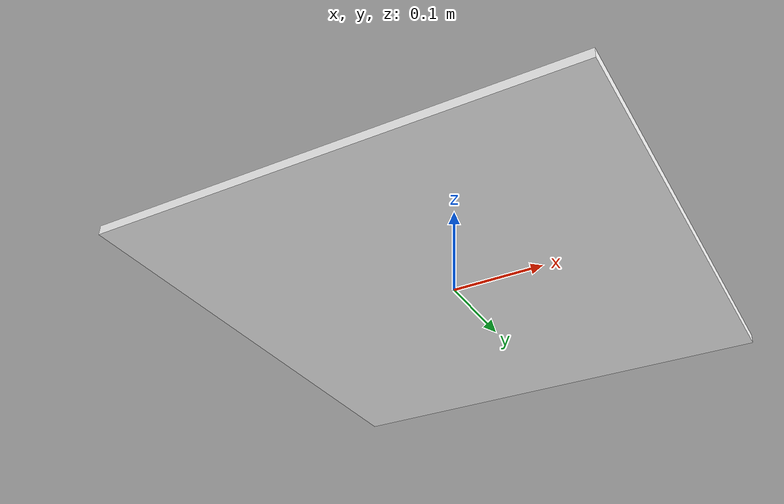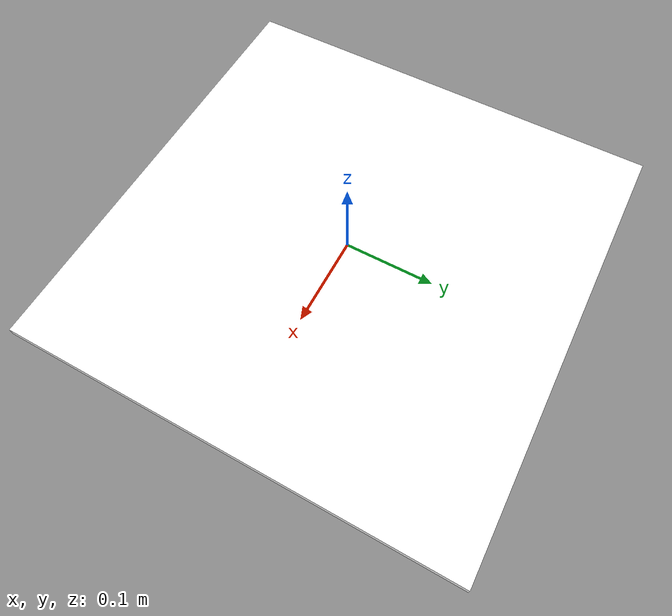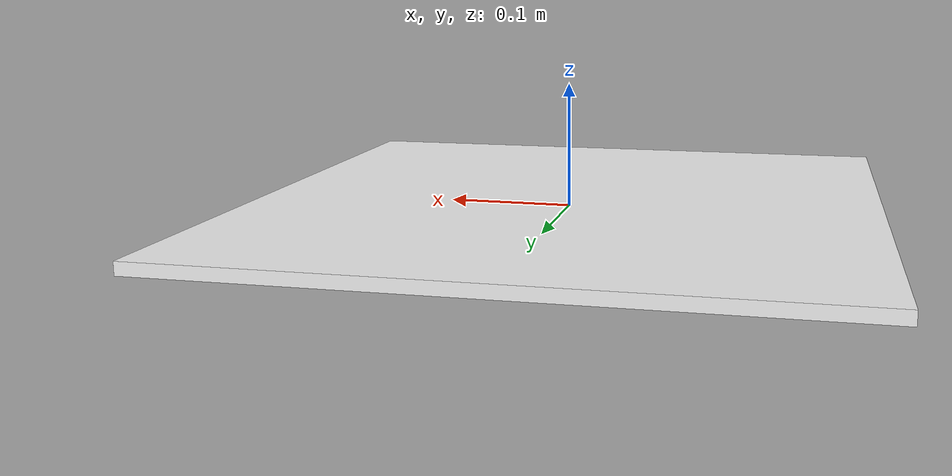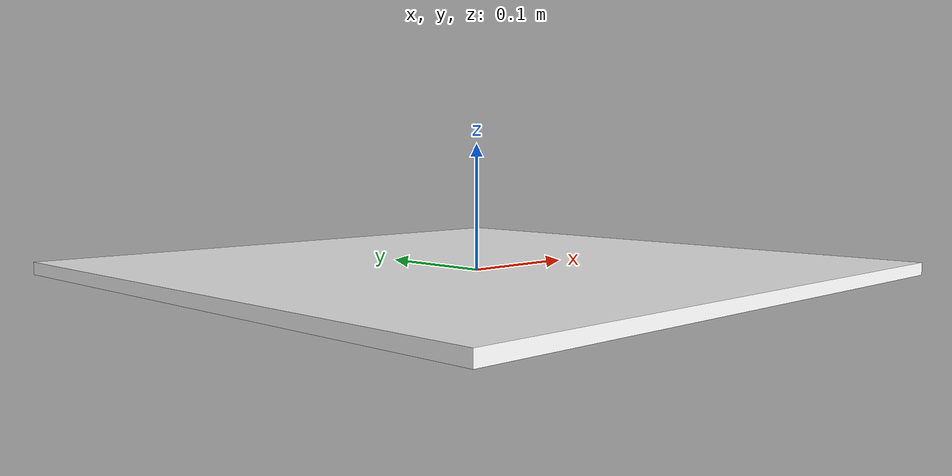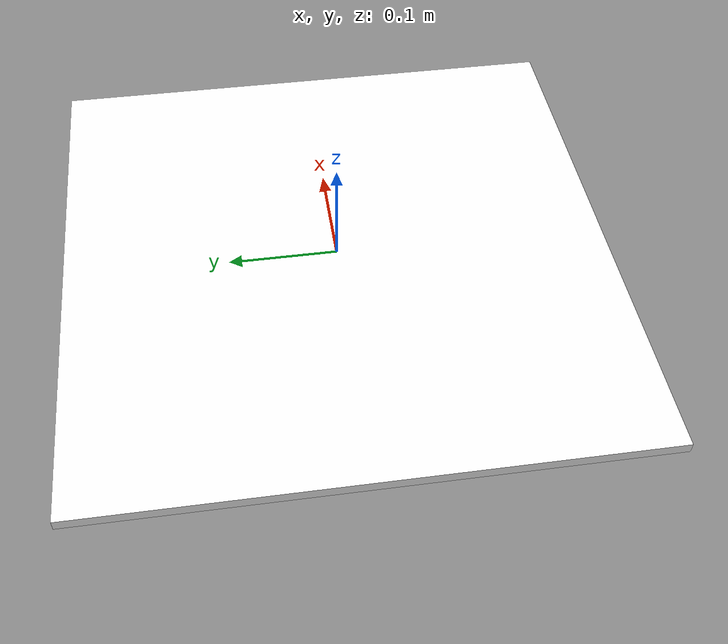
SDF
<?xml version='1.0'?>

<sdf version='1.7'>
  <model name='dogpad'>
    <static>true</static>

    <link name="dogpad_link">
      <pose>0 0 0.001 0 0 0</pose>
      <visual name='visual'>
        <geometry>
          <box><size>0.5 0.5 0.01</size></box>
        </geometry>
        <material>
          <ambient>1 1 1 1</ambient>
          <diffuse>1 1 1 1</diffuse>
          <specular>0 0 0 1</specular>
          <pbr>
            <metal>
              <metalness>0</metalness>
              <roughness>0.9</roughness>
              <albedo_map>
                materials/textures/tag36h11-584.png
              </albedo_map>
            </metal>
          </pbr>
        </material>
      </visual>
    </link>

  </model>
</sdf>
